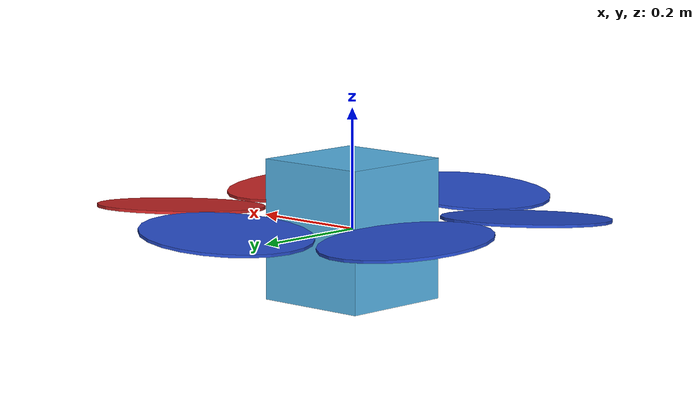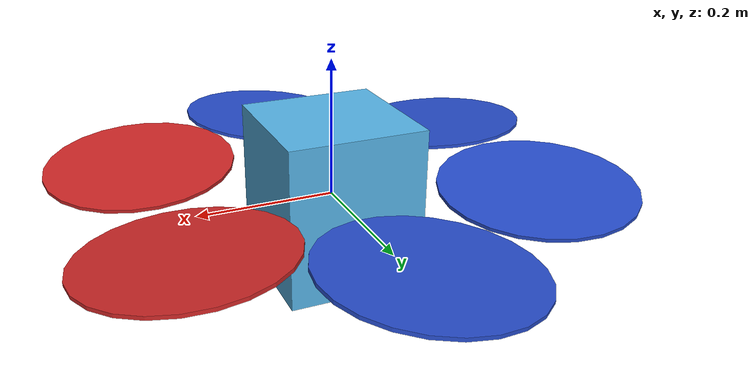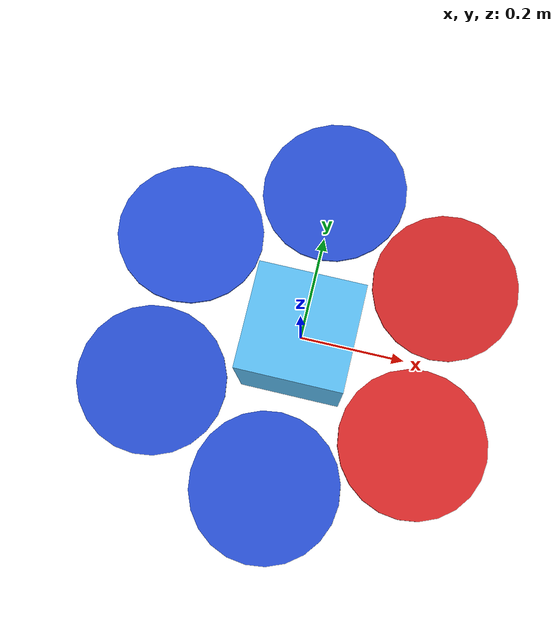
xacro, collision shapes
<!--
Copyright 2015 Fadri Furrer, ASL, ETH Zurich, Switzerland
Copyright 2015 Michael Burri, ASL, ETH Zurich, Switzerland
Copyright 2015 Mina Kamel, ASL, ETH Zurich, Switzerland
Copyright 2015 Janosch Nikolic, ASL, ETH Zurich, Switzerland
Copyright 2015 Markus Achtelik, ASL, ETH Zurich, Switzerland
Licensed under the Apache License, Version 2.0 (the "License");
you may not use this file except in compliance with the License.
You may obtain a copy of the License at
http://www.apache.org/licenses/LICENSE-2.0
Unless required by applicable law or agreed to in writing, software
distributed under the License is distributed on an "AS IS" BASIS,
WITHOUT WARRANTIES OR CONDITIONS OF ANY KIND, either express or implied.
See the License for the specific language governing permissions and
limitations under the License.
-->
<?xml version="1.0"?>

<robot name="neo11" xmlns:xacro="http://ros.org/wiki/xacro">
  <!-- Properties -->
  <xacro:property name="namespace" value="neo11" />
  <xacro:property name="rotor_velocity_slowdown_sim" value="10" />
  <xacro:property name="use_mesh_file" value="true" />
  <xacro:property name="mesh_file" value="package://rotors_description/meshes/neo11.dae" />
  <xacro:property name="mass" value="3.42" /> <!-- [kg] -->
  <xacro:property name="body_width" value="0.2" />
  <xacro:property name="body_height" value="0.234" />
  <xacro:property name="mass_rotor" value="0.005" /> <!-- [kg] -->
  <xacro:property name="arm_length" value="0.2895" />
  <xacro:property name="rotor_offset_top" value="0.028" />
  <xacro:property name="radius_rotor" value="0.1397" />
  <xacro:property name="motor_constant" value="1.269e-05" /> <!-- [kg m/s^2] -->
  <xacro:property name="moment_constant" value="0.016754" />
  <xacro:property name="time_constant_up" value="0.0182" />
  <xacro:property name="time_constant_down" value="0.0182" />
  <xacro:property name="max_rot_velocity" value="1047.2" /> <!-- [rad/s] -->
  <xacro:property name="sin30" value="0.5" />
  <xacro:property name="cos30" value="0.866025403784" />
  <xacro:property name="front_propeller_x" value="0.247" />
  <xacro:property name="front_propeller_y" value="0.1506" />
  <xacro:property name="side_propeller_x" value="-0.00067" />
  <xacro:property name="side_propeller_y" value="0.28929" />
  <xacro:property name="back_propeller_x" value="-0.2501" />
  <xacro:property name="back_propeller_y" value="0.1454" />
  <xacro:property name="rotor_drag_coefficient" value="2.0673e-04" />
  <xacro:property name="rolling_moment_coefficient" value="0.0" />

  <!-- Property Blocks -->
  <xacro:property name="body_inertia">
    <inertia ixx="6.08870e-02" ixy="0.0" ixz="0.0" iyy="6.87913e-02" iyz="0.0" izz="1.48916e-01" /> <!-- [kg m^2] [kg m^2] [kg m^2] [kg m^2] [kg m^2] [kg m^2] -->
  </xacro:property>

  <!-- inertia of a single rotor, assuming it is a cuboid. Height=3mm, width=15mm -->
  <xacro:property name="rotor_inertia">
    <xacro:box_inertia x="${radius_rotor}" y="0.015" z="0.003" mass="${mass_rotor*rotor_velocity_slowdown_sim}" />
  </xacro:property>

  <!-- Included URDF Files -->
  <xacro:include filename="$(find movedrone_setup_assistant)/urdf/multirotor_base.xacro" />

  <!-- Instantiate multirotor_base_macro once -->
  <xacro:multirotor_base_macro
    robot_namespace="${namespace}"
    mass="${mass}"
    body_width="${body_width}"
    body_height="${body_height}"
    use_mesh_file="${use_mesh_file}"
    mesh_file="${mesh_file}"
    >
    <xacro:insert_block name="body_inertia" />
  </xacro:multirotor_base_macro>

  <!-- Instantiate rotors -->
  <xacro:vertical_rotor
    robot_namespace="${namespace}"
    suffix="front_left"
    direction="ccw"
    motor_constant="${motor_constant}"
    moment_constant="${moment_constant}"
    parent="${namespace}/base_link"
    mass_rotor="${mass_rotor}"
    radius_rotor="${radius_rotor}"
    time_constant_up="${time_constant_up}"
    time_constant_down="${time_constant_down}"
    max_rot_velocity="${max_rot_velocity}"
    motor_number="0"
    rotor_drag_coefficient="${rotor_drag_coefficient}"
    rolling_moment_coefficient="${rolling_moment_coefficient}"
    color="Red"
    use_own_mesh="true"
    mesh="package://rotors_description/meshes/neo11_propeller_ccw.dae">
    <origin xyz="${front_propeller_x} ${front_propeller_y} ${rotor_offset_top}" rpy="${5*pi/180} 0 ${30*pi/180}" />
    <xacro:insert_block name="rotor_inertia" />
  </xacro:vertical_rotor>

  <xacro:vertical_rotor
    robot_namespace="${namespace}"
    suffix="left"
    direction="cw"
    motor_constant="${motor_constant}"
    moment_constant="${moment_constant}"
    parent="${namespace}/base_link"
    mass_rotor="${mass_rotor}"
    radius_rotor="${radius_rotor}"
    time_constant_up="${time_constant_up}"
    time_constant_down="${time_constant_down}"
    max_rot_velocity="${max_rot_velocity}"
    motor_number="1"
    rotor_drag_coefficient="${rotor_drag_coefficient}"
    rolling_moment_coefficient="${rolling_moment_coefficient}"
    color="Blue"
    use_own_mesh="true"
    mesh="package://rotors_description/meshes/neo11_propeller_cw.dae">
    <origin xyz="${side_propeller_x} ${side_propeller_y} ${rotor_offset_top}" rpy="0 ${-5*pi/180} 0" />
    <xacro:insert_block name="rotor_inertia" />
  </xacro:vertical_rotor>

  <xacro:vertical_rotor robot_namespace="${namespace}"
    suffix="back_left"
    direction="ccw"
    motor_constant="${motor_constant}"
    moment_constant="${moment_constant}"
    parent="${namespace}/base_link"
    mass_rotor="${mass_rotor}"
    radius_rotor="${radius_rotor}"
    time_constant_up="${time_constant_up}"
    time_constant_down="${time_constant_down}"
    max_rot_velocity="${max_rot_velocity}"
    motor_number="2"
    rotor_drag_coefficient="${rotor_drag_coefficient}"
    rolling_moment_coefficient="${rolling_moment_coefficient}"
    color="Blue"
    use_own_mesh="true"
    mesh="package://rotors_description/meshes/neo11_propeller_ccw.dae">
    <origin xyz="${back_propeller_x} ${back_propeller_y} ${rotor_offset_top}" rpy="${5*pi/180} 0 ${150*pi/180}" />
    <xacro:insert_block name="rotor_inertia" />
  </xacro:vertical_rotor>

  <xacro:vertical_rotor robot_namespace="${namespace}"
    suffix="back_right"
    direction="cw"
    motor_constant="${motor_constant}"
    moment_constant="${moment_constant}"
    parent="${namespace}/base_link"
    mass_rotor="${mass_rotor}"
    radius_rotor="${radius_rotor}"
    time_constant_up="${time_constant_up}"
    time_constant_down="${time_constant_down}"
    max_rot_velocity="${max_rot_velocity}"
    motor_number="3"
    rotor_drag_coefficient="${rotor_drag_coefficient}"
    rolling_moment_coefficient="${rolling_moment_coefficient}"
    color="Blue"
    use_own_mesh="true"
    mesh="package://rotors_description/meshes/neo11_propeller_cw.dae">
    <origin xyz="${back_propeller_x} -${back_propeller_y} ${rotor_offset_top}" rpy="${-5*pi/180} 0 ${-150*pi/180}" />
    <xacro:insert_block name="rotor_inertia" />
  </xacro:vertical_rotor>

  <xacro:vertical_rotor
    robot_namespace="${namespace}"
    suffix="right"
    direction="ccw"
    motor_constant="${motor_constant}"
    moment_constant="${moment_constant}"
    parent="${namespace}/base_link"
    mass_rotor="${mass_rotor}"
    radius_rotor="${radius_rotor}"
    time_constant_up="${time_constant_up}"
    time_constant_down="${time_constant_down}"
    max_rot_velocity="${max_rot_velocity}"
    motor_number="4"
    rotor_drag_coefficient="${rotor_drag_coefficient}"
    rolling_moment_coefficient="${rolling_moment_coefficient}"
    color="Blue"
    use_own_mesh="true"
    mesh="package://rotors_description/meshes/neo11_propeller_ccw.dae">
    <origin xyz="${side_propeller_x} -${side_propeller_y} ${rotor_offset_top}" rpy="0 ${5*pi/180} ${pi}" />
    <xacro:insert_block name="rotor_inertia" />
  </xacro:vertical_rotor>

  <xacro:vertical_rotor
    robot_namespace="${namespace}"
    suffix="front_right"
    direction="cw"
    motor_constant="${motor_constant}"
    moment_constant="${moment_constant}"
    parent="${namespace}/base_link"
    mass_rotor="${mass_rotor}"
    radius_rotor="${radius_rotor}"
    time_constant_up="${time_constant_up}"
    time_constant_down="${time_constant_down}"
    max_rot_velocity="${max_rot_velocity}"
    motor_number="5"
    rotor_drag_coefficient="${rotor_drag_coefficient}"
    rolling_moment_coefficient="${rolling_moment_coefficient}"
    color="Red"
    use_own_mesh="true"
    mesh="package://rotors_description/meshes/neo11_propeller_cw.dae">
    <origin xyz="${front_propeller_x} -${front_propeller_y} ${rotor_offset_top}" rpy="${-5*pi/180} 0 ${-30*pi/180}" />
    <xacro:insert_block name="rotor_inertia" />
  </xacro:vertical_rotor>

</robot>

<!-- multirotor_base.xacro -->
<robot xmlns:xacro="http://ros.org/wiki/xacro">

  <!-- Macro for the inertia of a box -->
  <xacro:macro name="box_inertia" params="x y z mass">
    <inertia ixx="${0.0833333 * mass * (y*y + z*z)}" ixy="0.0" ixz="0.0" iyy="${0.0833333 * mass * (x*x + z*z)}" iyz="0.0" izz="${0.0833333 * mass * (x*x + y*y)}" />
  </xacro:macro>

  <!-- Macro for the inertial properties of a box -->
  <xacro:macro name="box_inertial" params="x y z mass *origin">
    <inertial>
      <mass value="${mass}" />
      <xacro:insert_block name="origin" />
      <xacro:box_inertia x="${x}" y="${y}" z="${z}" mass="${mass}" />
    </inertial>
  </xacro:macro>

  <!-- Main multirotor link -->
  <xacro:macro name="multirotor_base_macro" params="robot_namespace mass body_width body_height use_mesh_file mesh_file *inertia">
    <link name="${robot_namespace}/base_link"></link>

    <joint name="${robot_namespace}/base_joint" type="fixed">
      <origin xyz="0 0 0" rpy="0 0 0" />
      <parent link="${robot_namespace}/base_link" />
      <child link="${robot_namespace}/base_link_inertia" />
    </joint>

    <link name="${robot_namespace}/base_link_inertia">
      <inertial>
        <mass value="${mass}" />
        <origin xyz="0 0 0" />
        <xacro:insert_block name="inertia" />
      </inertial>

      <visual>
        <origin xyz="0 0 0" rpy="0 0 0" />
        <geometry>
          <xacro:if value="${use_mesh_file}">
            <mesh filename="${mesh_file}" scale="1 1 1" />
          </xacro:if>
          <xacro:unless value="${use_mesh_file}">
            <box size="${body_width} ${body_width} ${body_height}"/>
          </xacro:unless>
        </geometry>
      </visual>

      <collision>
        <origin xyz="0 0 0" rpy="0 0 0" />
        <geometry>
          <box size="${body_width} ${body_width} ${body_height}" />
        </geometry>
      </collision>
    </link>
  </xacro:macro>

  <!-- Rotor joint and link -->
  <xacro:macro name="vertical_rotor" params="robot_namespace direction parent mass_rotor radius_rotor motor_number color use_own_mesh mesh *origin *inertia">
    <joint name="${robot_namespace}/rotor_${motor_number}_joint" type="continuous">
      <xacro:insert_block name="origin" />
      <axis xyz="0 0 1" />
      <parent link="${parent}" />
      <child link="${robot_namespace}/rotor_${motor_number}" />
    </joint>
    <link name="${robot_namespace}/rotor_${motor_number}">
      <inertial>
        <mass value="${mass_rotor}" />
        <xacro:insert_block name="inertia" />
      </inertial>
      <visual>
        <geometry>
          <xacro:if value="${use_own_mesh}">
            <mesh filename="${mesh}" scale="1 1 1" />
          </xacro:if>
          <xacro:unless value="${use_own_mesh}">
            <mesh filename="package://tobas_description/meshes/propeller_${direction}.dae" scale="${radius_rotor} ${radius_rotor} ${radius_rotor}" />
          </xacro:unless>
        </geometry>
      </visual>
      <collision>
        <geometry>
          <cylinder length="0.005" radius="${radius_rotor}" />
        </geometry>
      </collision>
    </link>
    <gazebo reference="${robot_namespace}/rotor_${motor_number}">
      <material>Gazebo/${color}</material>
    </gazebo>
  </xacro:macro>

  <!-- Virtual frame for visualization -->
  <xacro:macro name="virtual_frame" params="parent name *origin">
    <joint name="${name}_joint" type="fixed">
      <xacro:insert_block name="origin"/>
      <parent link="${parent}"/>
      <child link="${name}_link"/>
    </joint>

    <link name="${name}_link">
      <inertial>
        <mass value="1e-9"/>
        <inertia ixx="1e-9" ixy="0" ixz="0" iyy="1e-9" iyz="0" izz="1e-9"/>
      </inertial>
      <visual>
        <geometry>
          <box size="1e-3 1e-3 1e-3"/>
        </geometry>
        <material name="Red">
          <color rgba="1.0 0.0 0.0 1.0"/>
        </material>
      </visual>
      <collision>
        <geometry>
          <box size="1e-3 1e-3 1e-3"/>
        </geometry>
      </collision>
    </link>
  </xacro:macro>

</robot>
